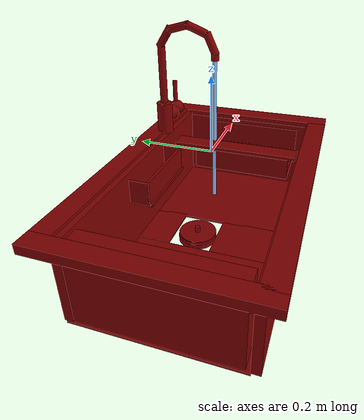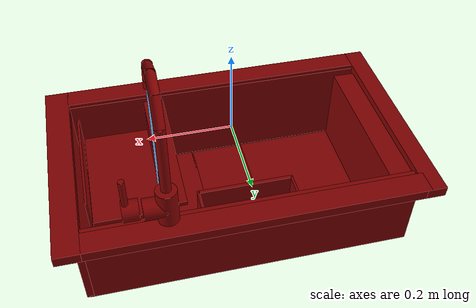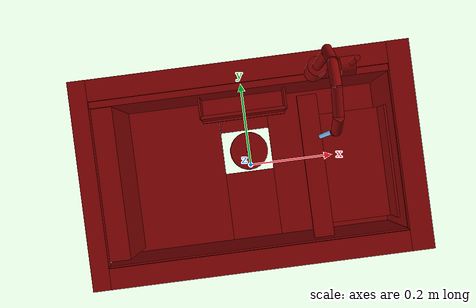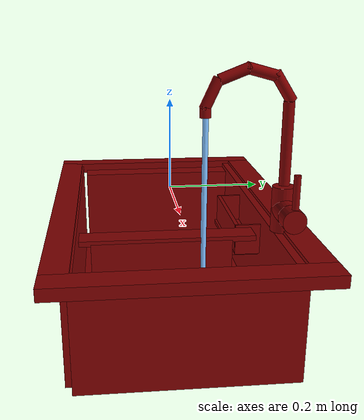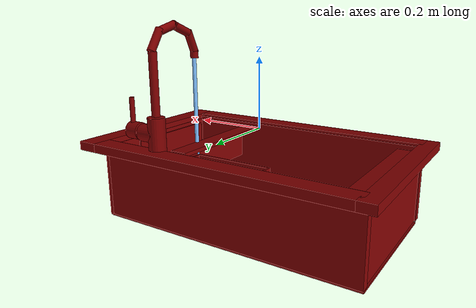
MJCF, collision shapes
<mujoco model="model">
  <compiler angle="radian"/>
  <asset>
    <mesh file="visuals/handle.obj" name="handle_vis"/>
    <mesh file="visuals/Body001.obj" name="Body001_vis"/>
    <mesh file="visuals/Funnel001.obj" name="Funnel001_vis"/>
    <mesh file="visuals/Shelf001.obj" name="Shelf001_vis"/>
    <mesh file="visuals/Shelf002.obj" name="Shelf002_vis"/>
    <mesh file="visuals/spout.obj" name="spout_vis"/>
    <texture file="visuals/T_BC001.png" name="Body001_material" type="2d"/>
    <material name="Body001_material" rgba="1 1 1 1.0" texture="Body001_material" shininess="2" specular="2"/>
    <texture file="visuals/T_BC001.png" name="handle_material" type="2d"/>
    <material name="handle_material" rgba="1 1 1 1.0" texture="handle_material" shininess="3" specular="3"/>
    <texture file="visuals/T_BC001.png" name="Funnel001_material" type="2d"/>
    <material name="Funnel001_material" rgba="1 1 1 1.0" texture="Funnel001_material" shininess="3" specular="3"/>
    <texture file="visuals/T_BC001.png" name="Shelf001_material" type="2d"/>
    <material name="Shelf001_material" rgba="1 1 1 1.0" texture="Shelf001_material" shininess="3" specular="3"/>
    <texture file="visuals/T_BC001.png" name="Shelf002_material" type="2d"/>
    <material name="Shelf002_material" rgba="1 1 1 1.0" texture="Shelf002_material" shininess="3" specular="3"/>
    <texture file="visuals/T_BC001.png" name="spout_material" type="2d"/>
    <material name="spout_material" rgba="1 1 1 1.0" texture="spout_material" shininess="3" specular="3"/>
  </asset>
  <default>
    <default class="visual">
      <geom conaffinity="0" contype="0" group="1" type="mesh"/>
    </default>
    <default class="collision">
      <geom group="0" rgba="0.5 0 0 0.5"/>
    </default>
    <default class="spawn">
      <geom group="0" rgba="1 1 1 0.5" contype="0" conaffinity="0"/>
      <site group="0" rgba="1 1 1 0.5"/>
    </default>
    <default class="region">
      <geom group="1" conaffinity="0" contype="0" rgba="0 1 0 0"/>
    </default>
  </default>
  <worldbody>
    <body>
      <body name="object">
        <geom mesh="Body001_vis" type="mesh" solimp="0.998 0.998 0.001" solref="0.001 1" density="100" friction="0.95 0.3 0.1" class="visual" material="Body001_material"/>
        <geom class="collision" type="box" pos="-0.414185 -0.000400 -0.051547" size="0.023054195567965508 0.2684677541255951 0.01256963238120079" quat="1.0 0.0 0.0 0.0"/>
        <geom class="collision" type="box" pos="0.408114 -0.000400 -0.051547" size="0.02912583202123642 0.2684676945209503 0.012569631449878216" quat="1.0 0.0 0.0 0.0"/>
        <geom class="collision" type="box" pos="-0.010615 -0.241809 -0.051547" size="0.39141741394996643 0.02705850824713707 0.012569627724587917" quat="1.0 0.0 0.0 0.0"/>
        <geom class="collision" type="box" pos="-0.010615 0.239930 -0.051547" size="0.39141732454299927 0.027941841632127762 0.012569626793265343" quat="1.0 0.0 0.0 0.0"/>
        <geom class="collision" type="box" pos="-0.010615 -0.221858 -0.157605" size="0.3914172351360321 0.01127241924405098 0.11095041036605835" quat="1.0 0.0 0.0 0.0"/>
        <geom class="collision" type="box" pos="0.387903 -0.003739 -0.165280" size="0.01046762801706791 0.21606571972370148 0.10984916985034943" quat="1.0 0.0 0.0 0.0"/>
        <geom class="collision" type="box" pos="-0.368115 0.002410 -0.161123" size="0.03185311704874039 0.20309358835220337 0.10391486436128616" quat="1.0 0.0 0.0 0.0"/>
        <geom class="collision" type="box" pos="-0.239047 0.000522 -0.273527" size="0.16298368573188782 0.21206775307655334 0.002776957815513015" quat="1.0 0.0 0.0 0.0"/>
        <geom class="collision" type="box" pos="-0.010615 0.206201 -0.157605" size="0.3914168179035187 0.011272406205534935 0.11095031350851059" quat="1.0 0.0 0.0 0.0"/>
        <geom class="collision" type="cylinder" pos="0.187416 0.213889 0.002282" size="0.02383415773510933 0.04755035787820816" quat="1.0 0.0 0.0 0.0"/>
        <geom class="collision" type="cylinder" pos="0.215231 0.213889 0.002282" size="0.02383415773510933 0.024885183200240135" quat="0.7071068286895752 -0.0 0.7071067690849304 0.0"/>
        <geom class="collision" type="box" pos="0.228067 0.000522 -0.273527" size="0.16298343241214752 0.21206749975681305 0.0027769538573920727" quat="1.0 0.0 0.0 0.0"/>
        <geom class="collision" type="box" pos="-0.001567 0.158247 -0.273527" size="0.0730087012052536 0.054342612624168396 0.0027769533917307854" quat="1.0 0.0 0.0 0.0"/>
        <geom class="collision" type="box" pos="-0.003356 -0.114450 -0.273527" size="0.073008693754673 0.09705771505832672 0.0027769531589001417" quat="1.0 0.0 0.0 0.0"/>
        <geom class="collision" type="cylinder" pos="-0.000221 0.042738 -0.286219" size="0.05538108944892883 0.00779994810000062" quat="1.0 0.0 0.0 0.0"/>
        <body name="handle">
          <joint axis="1.0 0.0 0.0" pos="0.266117 0.211978 0.003681" limited="true" name="handle_joint_hinge_0" type="hinge" range="-0.7853981633974483 0.7853981633974483" damping="1" frictionloss="1" armature=".01" stiffness="0.05"/>
          <joint axis="0.0 1.0 0.0" pos="0.266117 0.211978 0.003681" limited="true" name="handle_joint_hinge_1" type="hinge" range="0.0 0.17453292519943295" damping="1" frictionloss="1" armature=".01" stiffness="0.05"/>
          <geom mesh="handle_vis" type="mesh" solimp="0.998 0.998 0.001" solref="0.001 1" density="100" friction="0.95 0.3 0.1" class="visual" material="handle_material"/>
          <geom class="collision" type="cylinder" pos="0.265428 0.211658 0.004394" size="0.02383415773510933 0.018290620297193527" quat="0.7071068286895752 -0.0 0.7071067690849304 0.0"/>
          <geom class="collision" type="cylinder" pos="0.274320 0.213368 0.060824" size="0.006863738875836134 0.03465331345796585" quat="1.0 0.0 0.0 0.0"/>
        </body>
        <body name="Funnel001">
          <joint axis="0.0 0.0 1.0" pos="-0.000282 0.043390 -0.274682" limited="true" name="Funnel001_joint" range="0.0 0.06" type="slide" damping="0" frictionloss="0" armature=".01" stiffness="0.05"/>
          <geom mesh="Funnel001_vis" type="mesh" solimp="0.998 0.998 0.001" solref="0.001 1" density="1000" friction="0.95 0.3 0.1" class="visual" material="Funnel001_material"/>
          <geom class="collision" type="cylinder" pos="0.000613 0.042325 -0.271493" size="0.054520800709724426 0.0013968871207907796" quat="1.0 0.0 0.0 0.0"/>
          <geom class="collision" type="cylinder" pos="-0.000221 0.042738 -0.266131" size="0.007103640586137772 0.012234814465045929" quat="1.0 0.0 0.0 0.0"/>
        </body>
        <body name="Shelf001">
          <joint axis="0.0 0.0 1.0" pos="0.267704 -0.033152 -0.109388" limited="true" name="Shelf001_joint" range="0.0 0.06" type="slide" damping="1" frictionloss="1" armature=".01" stiffness="0.05"/>
          <geom mesh="Shelf001_vis" type="mesh" solimp="0.998 0.998 0.001" solref="0.001 1" density="100" friction="0.95 0.3 0.1" class="visual" material="Shelf001_material"/>
          <geom class="collision" type="box" pos="0.164042 -0.022494 -0.060896" size="0.025579331442713737 0.18334241211414337 0.005609891843050718" quat="1.0 0.0 0.0 0.0"/>
          <geom class="collision" type="box" pos="0.270876 -0.034733 -0.141492" size="0.08489122241735458 0.14692017436027527 0.010312174446880817" quat="1.0 0.0 0.0 0.0"/>
          <geom class="collision" type="box" pos="0.186751 -0.035295 -0.108156" size="0.0028710034675896168 0.14635898172855377 0.045173279941082" quat="1.0 0.0 0.0 0.0"/>
          <geom class="collision" type="box" pos="0.361424 -0.035295 -0.108156" size="0.0028710034675896168 0.14635898172855377 0.045173279941082" quat="1.0 0.0 0.0 0.0"/>
        </body>
        <body name="Shelf002">
          <joint axis="0.0 0.0 1.0" pos="-0.001503 0.177090 -0.094508" limited="true" name="Shelf002_joint" range="0.0 0.06" type="slide" damping="1" frictionloss="1" armature=".01" stiffness="0.05"/>
          <geom mesh="Shelf002_vis" type="mesh" solimp="0.998 0.998 0.001" solref="0.001 1" density="100" friction="0.95 0.3 0.1" class="visual" material="Shelf002_material"/>
          <geom class="collision" type="box" pos="-0.002332 0.157285 -0.126844" size="0.11054285615682602 0.03088262863457203 0.0038003886584192514" quat="1.0 0.0 0.0 0.0"/>
          <geom class="collision" type="box" pos="-0.002332 0.136409 -0.093632" size="0.11054285615682602 0.00439953850582242 0.034315261989831924" quat="1.0 0.0 0.0 0.0"/>
          <geom class="collision" type="box" pos="-0.112274 0.161254 -0.093632" size="0.002740363823249936 0.02775304764509201 0.034315261989831924" quat="1.0 0.0 0.0 0.0"/>
          <geom class="collision" type="box" pos="0.109078 0.161254 -0.093632" size="0.002740363823249936 0.02775304764509201 0.034315261989831924" quat="1.0 0.0 0.0 0.0"/>
        </body>
        <body name="spout">
          <joint axis="0.0 0.0 1.0" pos="0.187204 0.213271 0.169190" limited="true" name="spout_joint" range="-0.7853981633974483 0.7853981633974483" type="hinge" damping="1" frictionloss="1" armature=".01" stiffness="0.05"/>
          <site type="cylinder" rgba="0.5 0.75 1 1" size="0.0057831453159451485 0.23046548664569855" pos="0.187447 0.050088 -0.022746" name="water"/>
          <geom mesh="spout_vis" type="mesh" solimp="0.998 0.998 0.001" solref="0.001 1" density="100" friction="0.95 0.3 0.1" class="visual" material="spout_material"/>
          <geom class="collision" type="cylinder" pos="0.187005 0.213889 0.136695" size="0.011294265277683735 0.08440812677145004" quat="1.0 0.0 0.0 0.0"/>
          <geom class="collision" type="cylinder" pos="0.187005 0.201010 0.248467" size="0.011294265277683735 0.032382093369960785" quat="0.958923876285553 0.2836635708808899 0.0 0.0"/>
          <geom class="collision" type="cylinder" pos="0.187005 0.157592 0.277378" size="0.011294265277683735 0.03238209709525108" quat="0.7945126295089722 0.6072476506233215 0.0 0.0"/>
          <geom class="collision" type="cylinder" pos="0.187005 0.105120 0.274394" size="0.011294265277683735 0.032382093369960785" quat="0.564933717250824 0.8251363039016724 0.0 0.0"/>
          <geom class="collision" type="cylinder" pos="0.187005 0.060820 0.237162" size="0.011294265277683735 0.032382093369960785" quat="0.21412184834480286 0.9768069386482239 0.0 0.0"/>
          <geom class="collision" type="cylinder" pos="0.187005 0.049292 0.202828" size="0.011294265277683735 0.011119321919977665" quat="1.0 0.0 0.0 0.0"/>
        </body>
        <geom class="region" name="reg_main" type="box" pos="0.0 0.0 -0.157341" size="0.43724 0.268867 0.118363"/>
        <geom class="region" name="reg_basin" type="box" pos="-0.09131500000000001 -0.025054999999999994 -0.16425250000000002" size="0.22873000000000002 0.196074 0.09978850000000002"/>
      </body>
    </body>
  </worldbody>
  <actuator>
    <motor name="handle_joint_hinge_0_actuator" joint="handle_joint_hinge_0" gear="10"/>
    <motor name="handle_joint_hinge_1_actuator" joint="handle_joint_hinge_1" gear="10"/>
    <motor name="Funnel001_joint_actuator" joint="Funnel001_joint" gear="10"/>
    <motor name="Shelf001_joint_actuator" joint="Shelf001_joint" gear="20"/>
    <motor name="Shelf002_joint_actuator" joint="Shelf002_joint" gear="20"/>
    <motor name="spout_joint_actuator" joint="spout_joint" gear="10"/>
  </actuator>
</mujoco>
